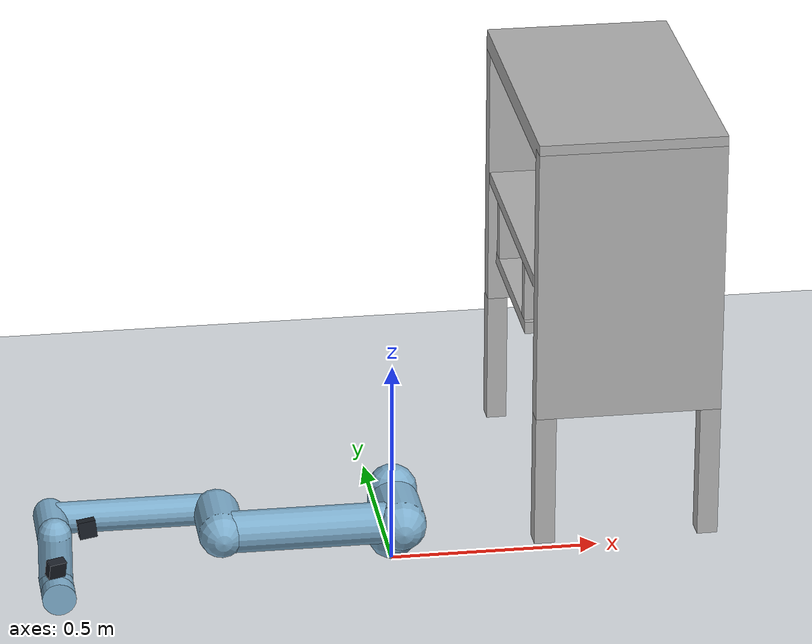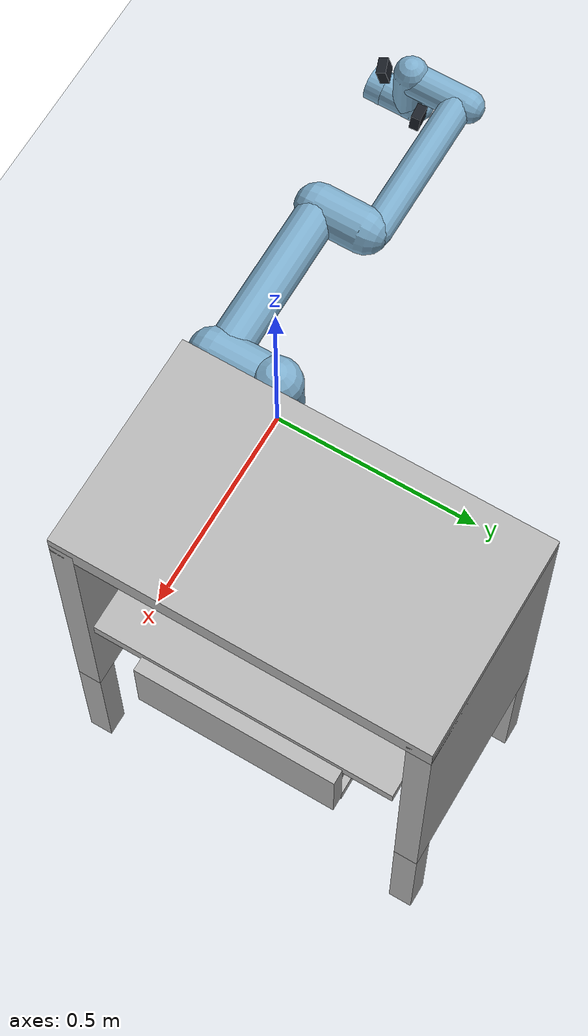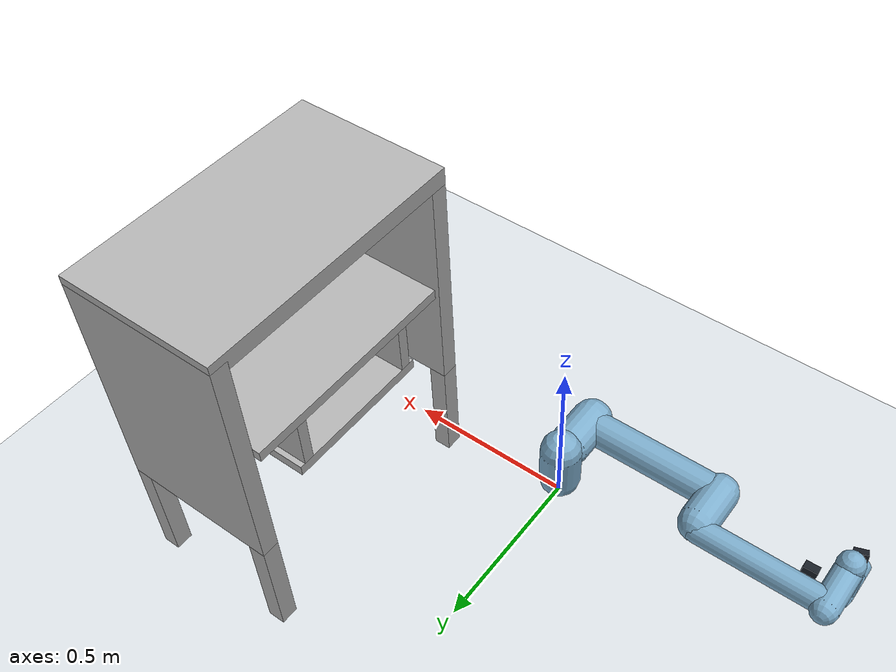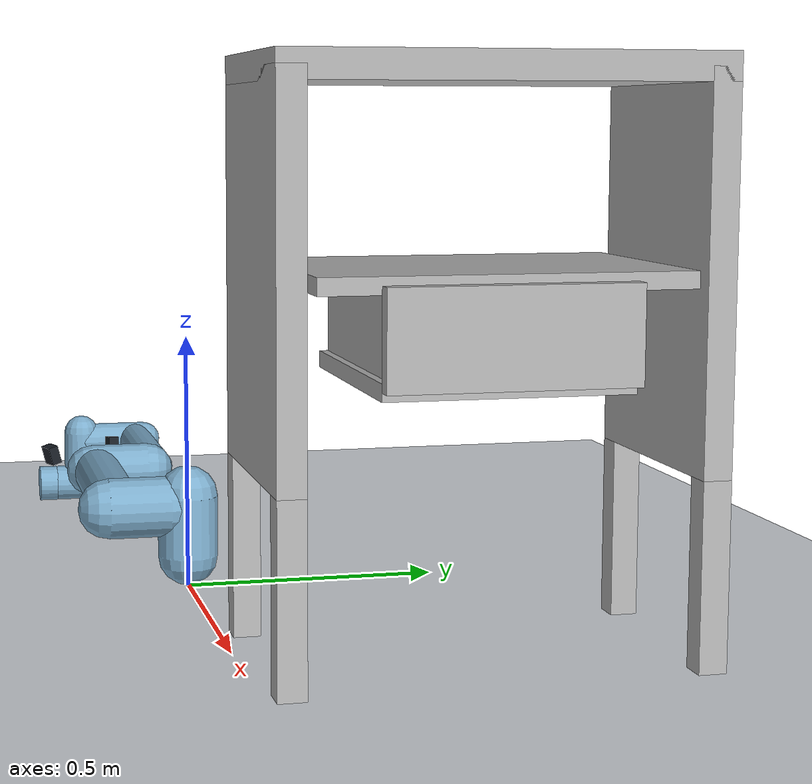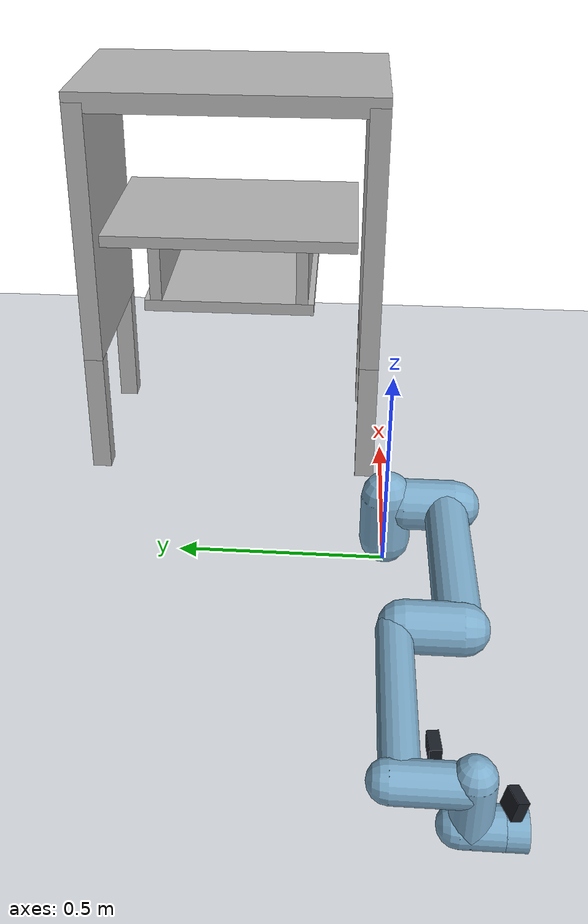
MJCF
<mujoco model="ur5e_grounded_cabinet_physical_20260917">
  <compiler angle="radian" autolimits="true" meshdir="D:\MuJoCo\Cabinet_Experiments\rerun_grounded_20260917\assets\ur5e\assets" />
  <option integrator="implicitfast" timestep="0.02" gravity="0 0 0" />
  <default>
    <default class="ur5e">
      <material specular="0.5" shininess="0.25" />
      <joint axis="0 1 0" range="-6.28319 6.28319" armature="0.1" />
      <general gaintype="fixed" biastype="affine" ctrlrange="-6.2831 6.2831" gainprm="2000" biasprm="0 -2000 -400" forcerange="-150 150" />
      <default class="size3">
        <default class="size3_limited">
          <joint range="-3.1415 3.1415" />
          <general ctrlrange="-3.1415 3.1415" />
        </default>
      </default>
      <default class="size1">
        <general gainprm="500" biasprm="0 -500 -100" forcerange="-28 28" />
      </default>
      <default class="visual">
        <geom type="mesh" contype="0" conaffinity="0" group="2" />
      </default>
      <default class="collision">
        <geom type="capsule" group="3" />
        <default class="eef_collision">
          <geom type="cylinder" />
        </default>
      </default>
      <site size="0.001" rgba="0.5 0.5 0.5 0.3" group="4" />
    </default>
  </default>
  <asset>
    <material class="ur5e" name="black" rgba="0.033 0.033 0.033 1" />
    <material class="ur5e" name="jointgray" rgba="0.278 0.278 0.278 1" />
    <material class="ur5e" name="linkgray" rgba="0.82 0.82 0.82 1" />
    <material class="ur5e" name="urblue" rgba="0.49 0.678 0.8 1" />
    <material name="floor" rgba=".86 .88 .90 1" />
    <material name="shelf" rgba="0.7 0.7 0.7 1.0" specular=".12" shininess=".12" />
    <material name="cage" rgba="0.20 0.24 0.28 0.55" />
    <material name="obstacle" rgba="0.55 0.22 0.18 1" />
    <mesh file="base_0.obj" />
    <mesh file="base_1.obj" />
    <mesh file="shoulder_0.obj" />
    <mesh file="shoulder_1.obj" />
    <mesh file="shoulder_2.obj" />
    <mesh file="upperarm_0.obj" />
    <mesh file="upperarm_1.obj" />
    <mesh file="upperarm_2.obj" />
    <mesh file="upperarm_3.obj" />
    <mesh file="forearm_0.obj" />
    <mesh file="forearm_1.obj" />
    <mesh file="forearm_2.obj" />
    <mesh file="forearm_3.obj" />
    <mesh file="wrist1_0.obj" />
    <mesh file="wrist1_1.obj" />
    <mesh file="wrist1_2.obj" />
    <mesh file="wrist2_0.obj" />
    <mesh file="wrist2_1.obj" />
    <mesh file="wrist2_2.obj" />
    <mesh file="wrist3.obj" />
    <texture name="display_sky" type="skybox" builtin="gradient" rgb1=".84 .89 .95" rgb2=".96 .97 .98" width="512" height="3072" />
  </asset>
  <worldbody>
    <body name="base" quat="0 0 0 -1" childclass="ur5e">
      <inertial mass="4.0" pos="0 0 0" diaginertia="0.00443333156 0.00443333156 0.0072" />
      <body name="shoulder_link" pos="0 0 0.163">
        <inertial mass="3.7" pos="0 0 0" diaginertia="0.0102675 0.0102675 0.00666" />
        <joint name="shoulder_pan_joint" class="size3" axis="0 0 1" />
        <geom class="collision" size="0.06 0.06" pos="0 0 -0.04" rgba="0.49 0.678 0.8 1" group="1" friction="0.8 0.1 0.1" />
        <body name="upper_arm_link" pos="0 0.138 0" quat="1 0 1 0">
          <inertial mass="8.393" pos="0 0 0.2125" diaginertia="0.133886 0.133886 0.0151074" />
          <joint name="shoulder_lift_joint" class="size3" />
          <geom class="collision" pos="0 -0.04 0" quat="1 1 0 0" size="0.06 0.06" rgba="0.49 0.678 0.8 1" group="1" friction="0.8 0.1 0.1" />
          <geom class="collision" size="0.05 0.2" pos="0 0 0.2" rgba="0.49 0.678 0.8 1" group="1" friction="0.8 0.1 0.1" />
          <body name="forearm_link" pos="0 -0.131 0.425">
            <inertial mass="2.275" pos="0 0 0.196" diaginertia="0.0311796 0.0311796 0.004095" />
            <joint name="elbow_joint" class="size3_limited" />
            <geom class="collision" pos="0 0.08 0" quat="1 1 0 0" size="0.055 0.06" rgba="0.49 0.678 0.8 1" group="1" friction="0.8 0.1 0.1" />
            <geom class="collision" size="0.038 0.19" pos="0 0 0.2" rgba="0.49 0.678 0.8 1" group="1" friction="0.8 0.1 0.1" />
            <body name="wrist_1_link" pos="0 0 0.392" quat="1 0 1 0">
              <inertial mass="1.219" pos="0 0.127 0" diaginertia="0.0025599 0.0025599 0.0021942" />
              <joint name="wrist_1_joint" class="size1" />
              <geom class="collision" pos="0 0.05 0" quat="1 1 0 0" size="0.04 0.07" rgba="0.49 0.678 0.8 1" group="1" friction="0.8 0.1 0.1" />
              <body name="wrist_2_link" pos="0 0.127 0">
                <inertial mass="1.219" pos="0 0 0.1" diaginertia="0.0025599 0.0025599 0.0021942" />
                <joint name="wrist_2_joint" axis="0 0 1" class="size1" />
                <geom class="collision" size="0.04 0.06" pos="0 0 0.04" rgba="0.49 0.678 0.8 1" group="1" friction="0.8 0.1 0.1" />
                <geom class="collision" pos="0 0.02 0.1" quat="1 1 0 0" size="0.04 0.04" rgba="0.49 0.678 0.8 1" group="1" friction="0.8 0.1 0.1" />
                <body name="wrist_3_link" pos="0 0 0.1">
                  <inertial mass="0.1889" pos="0 0.0771683 0" quat="1 0 0 1" diaginertia="0.000132134 9.90863e-05 9.90863e-05" />
                  <joint name="wrist_3_joint" class="size1" />
                  <geom class="eef_collision" pos="0 0.08 0" quat="1 1 0 0" size="0.04 0.02" rgba="0.49 0.678 0.8 1" group="1" friction="0.8 0.1 0.1" />
                  <site name="attachment_site" pos="0 0.070 0" quat="-1 1 0 0" />
                  <camera name="ur5_depth_wrist" pos="0 0.082575 -0.065" fovy="58" quat="0.599512975022579 0.7813005203969409 -0.13776436178754506 -0.10571031278128071" />
                  <geom name="formal_d405_wrist_housing" type="box" pos="-0.0041543535760831035 0.0711610073572811 -0.0682546494921642" quat="0.599512975022579 0.7813005203969409 -0.13776436178754506 -0.10571031278128071" size="0.021075 0.021075 0.011575" rgba="0.10 0.12 0.15 1" group="1" friction="0.8 0.1 0.1" />
                  <geom material="linkgray" mesh="wrist3" class="visual" group="5" contype="0" conaffinity="0" />
                </body>
                <geom mesh="wrist2_0" material="black" class="visual" group="5" contype="0" conaffinity="0" />
                <geom mesh="wrist2_1" material="urblue" class="visual" group="5" contype="0" conaffinity="0" />
                <geom mesh="wrist2_2" material="jointgray" class="visual" group="5" contype="0" conaffinity="0" />
              </body>
              <geom mesh="wrist1_0" material="black" class="visual" group="5" contype="0" conaffinity="0" />
              <geom mesh="wrist1_1" material="urblue" class="visual" group="5" contype="0" conaffinity="0" />
              <geom mesh="wrist1_2" material="jointgray" class="visual" group="5" contype="0" conaffinity="0" />
            </body>
            <camera name="ur5_depth_forearm" pos="0 0.075 0.31" quat="0.5059250092158937 0.4319329943648225 0.514929627115348 -0.5406674139873654" fovy="58" />
            <geom name="formal_d405_forearm_housing" type="box" pos="0.0006782482145986236 0.06253402911766576 0.3112126041781856" quat="0.5059250092158937 0.4319329943648225 0.514929627115348 -0.5406674139873654" size="0.021075 0.021075 0.011575" rgba="0.10 0.12 0.15 1" group="1" friction="0.8 0.1 0.1" />
            <geom mesh="forearm_0" material="urblue" class="visual" group="5" contype="0" conaffinity="0" />
            <geom mesh="forearm_1" material="linkgray" class="visual" group="5" contype="0" conaffinity="0" />
            <geom mesh="forearm_2" material="black" class="visual" group="5" contype="0" conaffinity="0" />
            <geom mesh="forearm_3" material="jointgray" class="visual" group="5" contype="0" conaffinity="0" />
          </body>
          <geom mesh="upperarm_0" material="linkgray" class="visual" group="5" contype="0" conaffinity="0" />
          <geom mesh="upperarm_1" material="black" class="visual" group="5" contype="0" conaffinity="0" />
          <geom mesh="upperarm_2" material="jointgray" class="visual" group="5" contype="0" conaffinity="0" />
          <geom mesh="upperarm_3" material="urblue" class="visual" group="5" contype="0" conaffinity="0" />
        </body>
        <geom mesh="shoulder_0" material="urblue" class="visual" group="5" contype="0" conaffinity="0" />
        <geom mesh="shoulder_1" material="black" class="visual" group="5" contype="0" conaffinity="0" />
        <geom mesh="shoulder_2" material="jointgray" class="visual" group="5" contype="0" conaffinity="0" />
      </body>
      <geom mesh="base_0" material="black" class="visual" group="5" contype="0" conaffinity="0" />
      <geom mesh="base_1" material="jointgray" class="visual" group="5" contype="0" conaffinity="0" />
    </body>
    <geom name="floor" type="plane" pos="0 0 0" size="2 2 0.04" material="floor" contype="1" conaffinity="1" />
    <geom name="drawer_bottom" type="box" pos="0.575 0.40633091 0.495" size="0.225 0.215 0.015" material="shelf" contype="1" conaffinity="1" />
    <geom name="drawer_left" type="box" pos="0.575 0.22133091 0.58" size="0.225 0.015 0.07" material="shelf" contype="1" conaffinity="1" />
    <geom name="drawer_right" type="box" pos="0.575 0.59133091 0.58" size="0.225 0.015 0.07" material="shelf" contype="1" conaffinity="1" />
    <geom name="drawer_ceiling" type="box" pos="0.575 0.40633091 0.665" size="0.225 0.32 0.015" material="shelf" contype="1" conaffinity="1" />
    <geom name="drawer_back" type="box" pos="0.815 0.40633091 0.58" size="0.015 0.215 0.085" material="shelf" contype="1" conaffinity="1" />
    <geom name="cabinet_left" type="box" pos="0.575 0.04633091 0.67" size="0.225 0.025 0.34" material="shelf" contype="1" conaffinity="1" />
    <geom name="cabinet_right" type="box" pos="0.575 0.76633091 0.67" size="0.225 0.025 0.34" material="shelf" contype="1" conaffinity="1" />
    <geom name="cabinet_top" type="box" pos="0.575 0.40633091 1.01" size="0.225 0.385 0.025" material="shelf" contype="1" conaffinity="1" />
    <site name="liuqp_target" type="sphere" pos="0.63 0.40633091 0.58" size=".007" rgba=".95 .22 .08 .9" group="0" />
    <geom name="cabinet_ground_cabinet_left_-1" type="box" pos="0.37499999999999994 0.04633091 0.165" size=".025 0.025 0.165" material="shelf" group="0" contype="1" conaffinity="1" />
    <geom name="cabinet_ground_cabinet_left_1" type="box" pos="0.7749999999999999 0.04633091 0.165" size=".025 0.025 0.165" material="shelf" group="0" contype="1" conaffinity="1" />
    <geom name="cabinet_ground_cabinet_right_-1" type="box" pos="0.37499999999999994 0.76633091 0.165" size=".025 0.025 0.165" material="shelf" group="0" contype="1" conaffinity="1" />
    <geom name="cabinet_ground_cabinet_right_1" type="box" pos="0.7749999999999999 0.76633091 0.165" size=".025 0.025 0.165" material="shelf" group="0" contype="1" conaffinity="1" />
    <light name="display_key" pos="-2 -2 4" dir=".3 .3 -1" diffuse=".65 .65 .65" ambient=".20 .20 .20" castshadow="true" />
    <light name="display_fill" pos="1 2 3" dir="-.3 -.3 -1" diffuse=".35 .35 .35" castshadow="false" />
  </worldbody>
  <actuator>
    <general class="size3" name="shoulder_pan" joint="shoulder_pan_joint" />
    <general class="size3" name="shoulder_lift" joint="shoulder_lift_joint" />
    <general class="size3_limited" name="elbow" joint="elbow_joint" />
    <general class="size1" name="wrist_1" joint="wrist_1_joint" />
    <general class="size1" name="wrist_2" joint="wrist_2_joint" />
    <general class="size1" name="wrist_3" joint="wrist_3_joint" />
  </actuator>
  <keyframe>
    <key name="home" qpos="-1.5708 -1.5708 1.5708 -1.5708 -1.5708 0" ctrl="-1.5708 -1.5708 1.5708 -1.5708 -1.5708 0" />
  </keyframe>
  <visual>
    <global azimuth="145" elevation="-23" offwidth="1440" offheight="1000" />
    <headlight ambient=".35 .35 .35" diffuse=".45 .45 .45" specular=".1 .1 .1" />
  </visual>
</mujoco>
